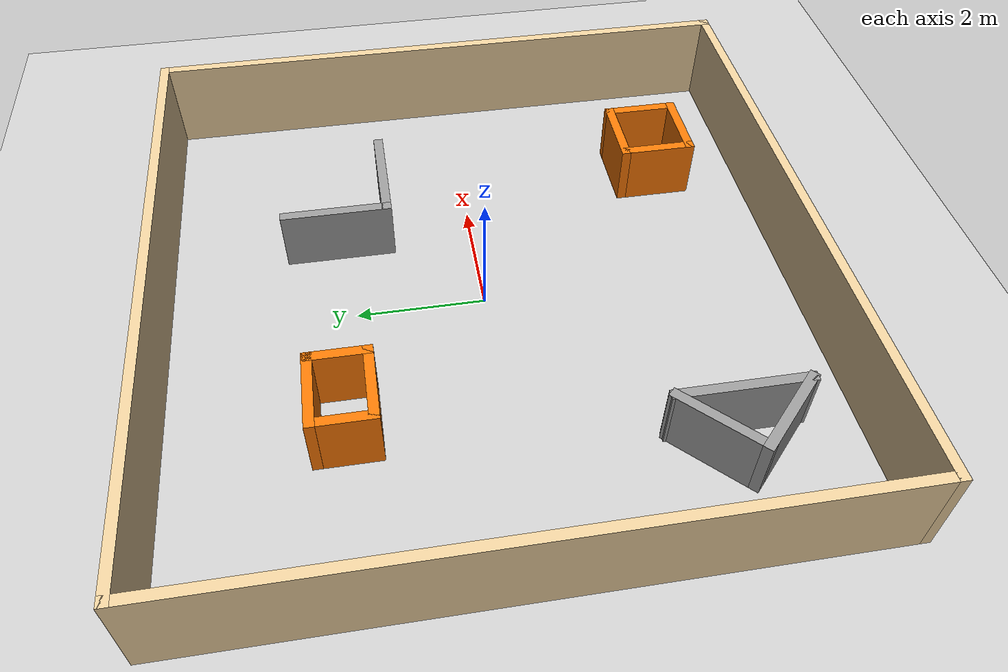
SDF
<sdf version="1.7">
 <world name="default">
  <include><uri>model://ground_plane</uri></include>
  <include><uri>model://sun</uri></include>
  <include><name>='Gazebo_world'</name><uri>model://Gazebo_world</uri><pose>0.005 0.0 0 0 -0 0</pose></include>
 </world>
</sdf>

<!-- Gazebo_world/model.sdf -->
<sdf version='1.7'>
  <model name='Gazebo_world'>
    <pose>0.005 -1.145 0 0 -0 0</pose>
    <link name='Wall_1'>
      <collision name='Wall_1_Collision'>
        <geometry>
          <box>
            <size>10 0.15 1.5</size>
          </box>
        </geometry>
        <pose>0 0 0.75 0 -0 0</pose>
      </collision>
      <visual name='Wall_1_Visual'>
        <pose>0 0 0.75 0 -0 0</pose>
        <geometry>
          <box>
            <size>10 0.15 1.5</size>
          </box>
        </geometry>
        <material>
          <script>
            <uri>file://media/materials/scripts/gazebo.material</uri>
            <name>Gazebo/Grey</name>
          </script>
          <ambient>0.921569 0.807843 0.615686 1</ambient>
        </material>
        <meta>
          <layer>0</layer>
        </meta>
      </visual>
      <pose>0 -4.925 0 0 -0 0</pose>
    </link>
    <link name='Wall_10'>
      <collision name='Wall_10_Collision'>
        <geometry>
          <box>
            <size>1 0.15 1</size>
          </box>
        </geometry>
        <pose>0 0 0.5 0 -0 0</pose>
      </collision>
      <visual name='Wall_10_Visual'>
        <pose>0 0 0.5 0 -0 0</pose>
        <geometry>
          <box>
            <size>1 0.15 1</size>
          </box>
        </geometry>
        <material>
          <script>
            <uri>file://media/materials/scripts/gazebo.material</uri>
            <name>Gazebo/Grey</name>
          </script>
          <ambient>0.996078 0.47451 0.0196078 1</ambient>
        </material>
        <meta>
          <layer>0</layer>
        </meta>
      </visual>
      <pose>-1.506 2.302 0 0 -0 1.5708</pose>
    </link>
    <link name='Wall_12'>
      <collision name='Wall_12_Collision'>
        <geometry>
          <box>
            <size>1.25 0.15 1</size>
          </box>
        </geometry>
        <pose>0 0 0.5 0 -0 0</pose>
      </collision>
      <visual name='Wall_12_Visual'>
        <pose>0 0 0.5 0 -0 0</pose>
        <geometry>
          <box>
            <size>1.25 0.15 1</size>
          </box>
        </geometry>
        <material>
          <script>
            <uri>file://media/materials/scripts/gazebo.material</uri>
            <name>Gazebo/Grey</name>
          </script>
          <ambient>0.996078 0.47451 0.0196078 1</ambient>
        </material>
        <meta>
          <layer>0</layer>
        </meta>
      </visual>
      <pose>2.64 -2.731 0 0 -0 3.14159</pose>
    </link>
    <link name='Wall_13'>
      <collision name='Wall_13_Collision'>
        <geometry>
          <box>
            <size>1.25 0.15 1</size>
          </box>
        </geometry>
        <pose>0 0 0.5 0 -0 0</pose>
      </collision>
      <visual name='Wall_13_Visual'>
        <pose>0 0 0.5 0 -0 0</pose>
        <geometry>
          <box>
            <size>1.25 0.15 1</size>
          </box>
        </geometry>
        <material>
          <script>
            <uri>file://media/materials/scripts/gazebo.material</uri>
            <name>Gazebo/Grey</name>
          </script>
          <ambient>0.996078 0.47451 0.0196078 1</ambient>
        </material>
        <meta>
          <layer>0</layer>
        </meta>
      </visual>
      <pose>2.09 -3.281 0 0 -0 -1.5708</pose>
    </link>
    <link name='Wall_14'>
      <collision name='Wall_14_Collision'>
        <geometry>
          <box>
            <size>1.25 0.15 1</size>
          </box>
        </geometry>
        <pose>0 0 0.5 0 -0 0</pose>
      </collision>
      <visual name='Wall_14_Visual'>
        <pose>0 0 0.5 0 -0 0</pose>
        <geometry>
          <box>
            <size>1.25 0.15 1</size>
          </box>
        </geometry>
        <material>
          <script>
            <uri>file://media/materials/scripts/gazebo.material</uri>
            <name>Gazebo/Grey</name>
          </script>
          <ambient>0.996078 0.47451 0.0196078 1</ambient>
        </material>
        <meta>
          <layer>0</layer>
        </meta>
      </visual>
      <pose>2.64 -3.831 0 0 -0 0</pose>
    </link>
    <link name='Wall_15'>
      <collision name='Wall_15_Collision'>
        <geometry>
          <box>
            <size>1.25 0.15 1</size>
          </box>
        </geometry>
        <pose>0 0 0.5 0 -0 0</pose>
      </collision>
      <visual name='Wall_15_Visual'>
        <pose>0 0 0.5 0 -0 0</pose>
        <geometry>
          <box>
            <size>1.25 0.15 1</size>
          </box>
        </geometry>
        <material>
          <script>
            <uri>file://media/materials/scripts/gazebo.material</uri>
            <name>Gazebo/Grey</name>
          </script>
          <ambient>0.996078 0.47451 0.0196078 1</ambient>
        </material>
        <meta>
          <layer>0</layer>
        </meta>
      </visual>
      <pose>3.19 -3.281 0 0 -0 1.5708</pose>
    </link>
    <link name='Wall_23'>
      <collision name='Wall_23_Collision'>
        <geometry>
          <box>
            <size>1.5 0.15 1</size>
          </box>
        </geometry>
        <pose>0 0 0.5 0 -0 0</pose>
      </collision>
      <visual name='Wall_23_Visual'>
        <pose>0 0 0.5 0 -0 0</pose>
        <geometry>
          <box>
            <size>1.5 0.15 1</size>
          </box>
        </geometry>
        <material>
          <script>
            <uri>file://media/materials/scripts/gazebo.material</uri>
            <name>Gazebo/Grey</name>
          </script>
          <ambient>1 1 1 1</ambient>
        </material>
        <meta>
          <layer>0</layer>
        </meta>
      </visual>
      <pose>-3.386 -2.584 0 0 -0 -2.35619</pose>
    </link>
    <link name='Wall_24'>
      <collision name='Wall_24_Collision'>
        <geometry>
          <box>
            <size>1.5 0.15 1</size>
          </box>
        </geometry>
        <pose>0 0 0.5 0 -0 0</pose>
      </collision>
      <visual name='Wall_24_Visual'>
        <pose>0 0 0.5 0 -0 0</pose>
        <geometry>
          <box>
            <size>1.5 0.15 1</size>
          </box>
        </geometry>
        <material>
          <script>
            <uri>file://media/materials/scripts/gazebo.material</uri>
            <name>Gazebo/Grey</name>
          </script>
          <ambient>1 1 1 1</ambient>
        </material>
        <meta>
          <layer>0</layer>
        </meta>
      </visual>
      <pose>-3.386 -3.5385 0 0 -0 -0.785922</pose>
    </link>
    <link name='Wall_25'>
      <collision name='Wall_25_Collision'>
        <geometry>
          <box>
            <size>2.05919 0.15 1</size>
          </box>
        </geometry>
        <pose>0 0 0.5 0 -0 0</pose>
      </collision>
      <visual name='Wall_25_Visual'>
        <pose>0 0 0.5 0 -0 0</pose>
        <geometry>
          <box>
            <size>2.05919 0.15 1</size>
          </box>
        </geometry>
        <material>
          <script>
            <uri>file://media/materials/scripts/gazebo.material</uri>
            <name>Gazebo/Grey</name>
          </script>
          <ambient>1 1 1 1</ambient>
        </material>
        <meta>
          <layer>0</layer>
        </meta>
      </visual>
      <pose>-2.909 -3.0615 0 0 -0 1.5708</pose>
    </link>
    <link name='Wall_27'>
      <collision name='Wall_27_Collision'>
        <geometry>
          <box>
            <size>1.75 0.15 1</size>
          </box>
        </geometry>
        <pose>0 0 0.5 0 -0 0</pose>
      </collision>
      <visual name='Wall_27_Visual'>
        <pose>0 0 0.5 0 -0 0</pose>
        <geometry>
          <box>
            <size>1.75 0.15 1</size>
          </box>
        </geometry>
        <material>
          <script>
            <uri>file://media/materials/scripts/gazebo.material</uri>
            <name>Gazebo/Grey</name>
          </script>
          <ambient>1 1 1 1</ambient>
        </material>
        <meta>
          <layer>0</layer>
        </meta>
      </visual>
      <pose>1.363 2.169 0 0 -0 -1.5708</pose>
    </link>
    <link name='Wall_28'>
      <collision name='Wall_28_Collision'>
        <geometry>
          <box>
            <size>1.75 0.15 1</size>
          </box>
        </geometry>
        <pose>0 0 0.5 0 -0 0</pose>
      </collision>
      <visual name='Wall_28_Visual'>
        <pose>0 0 0.5 0 -0 0</pose>
        <geometry>
          <box>
            <size>1.75 0.15 1</size>
          </box>
        </geometry>
        <material>
          <script>
            <uri>file://media/materials/scripts/gazebo.material</uri>
            <name>Gazebo/Grey</name>
          </script>
          <ambient>1 1 1 1</ambient>
        </material>
        <meta>
          <layer>0</layer>
        </meta>
      </visual>
      <pose>2.163 1.369 0 0 -0 0</pose>
    </link>
    <link name='Wall_3'>
      <collision name='Wall_3_Collision'>
        <geometry>
          <box>
            <size>10 0.15 1.5</size>
          </box>
        </geometry>
        <pose>0 0 0.75 0 -0 0</pose>
      </collision>
      <visual name='Wall_3_Visual'>
        <pose>0 0 0.75 0 -0 0</pose>
        <geometry>
          <box>
            <size>10 0.15 1.5</size>
          </box>
        </geometry>
        <material>
          <script>
            <uri>file://media/materials/scripts/gazebo.material</uri>
            <name>Gazebo/Grey</name>
          </script>
          <ambient>0.921569 0.807843 0.615686 1</ambient>
        </material>
        <meta>
          <layer>0</layer>
        </meta>
      </visual>
      <pose>-4.925 0 0 0 -0 1.5708</pose>
    </link>
    <link name='Wall_4'>
      <collision name='Wall_4_Collision'>
        <geometry>
          <box>
            <size>10 0.15 1.5</size>
          </box>
        </geometry>
        <pose>0 0 0.75 0 -0 0</pose>
      </collision>
      <visual name='Wall_4_Visual'>
        <pose>0 0 0.75 0 -0 0</pose>
        <geometry>
          <box>
            <size>10 0.15 1.5</size>
          </box>
        </geometry>
        <material>
          <script>
            <uri>file://media/materials/scripts/gazebo.material</uri>
            <name>Gazebo/Grey</name>
          </script>
          <ambient>0.921569 0.807843 0.615686 1</ambient>
        </material>
        <meta>
          <layer>0</layer>
        </meta>
      </visual>
      <pose>0 4.925 0 0 -0 0</pose>
    </link>
    <link name='Wall_5'>
      <collision name='Wall_5_Collision'>
        <geometry>
          <box>
            <size>10 0.15 1.5</size>
          </box>
        </geometry>
        <pose>0 0 0.75 0 -0 0</pose>
      </collision>
      <visual name='Wall_5_Visual'>
        <pose>0 0 0.75 0 -0 0</pose>
        <geometry>
          <box>
            <size>10 0.15 1.5</size>
          </box>
        </geometry>
        <material>
          <script>
            <uri>file://media/materials/scripts/gazebo.material</uri>
            <name>Gazebo/Grey</name>
          </script>
          <ambient>0.921569 0.807843 0.615686 1</ambient>
        </material>
        <meta>
          <layer>0</layer>
        </meta>
      </visual>
      <pose>4.925 0 0 0 -0 -1.5708</pose>
    </link>
    <link name='Wall_7'>
      <collision name='Wall_7_Collision'>
        <geometry>
          <box>
            <size>1.25 0.15 1</size>
          </box>
        </geometry>
        <pose>0 0 0.5 0 -0 0</pose>
      </collision>
      <visual name='Wall_7_Visual'>
        <pose>0 0 0.5 0 -0 0</pose>
        <geometry>
          <box>
            <size>1.25 0.15 1</size>
          </box>
        </geometry>
        <material>
          <script>
            <uri>file://media/materials/scripts/gazebo.material</uri>
            <name>Gazebo/Grey</name>
          </script>
          <ambient>0.996078 0.47451 0.0196078 1</ambient>
        </material>
        <meta>
          <layer>0</layer>
        </meta>
      </visual>
      <pose>-2.056 2.727 0 0 -0 3.14159</pose>
    </link>
    <link name='Wall_8'>
      <collision name='Wall_8_Collision'>
        <geometry>
          <box>
            <size>1 0.15 1</size>
          </box>
        </geometry>
        <pose>0 0 0.5 0 -0 0</pose>
      </collision>
      <visual name='Wall_8_Visual'>
        <pose>0 0 0.5 0 -0 0</pose>
        <geometry>
          <box>
            <size>1 0.15 1</size>
          </box>
        </geometry>
        <material>
          <script>
            <uri>file://media/materials/scripts/gazebo.material</uri>
            <name>Gazebo/Grey</name>
          </script>
          <ambient>0.996078 0.47451 0.0196078 1</ambient>
        </material>
        <meta>
          <layer>0</layer>
        </meta>
      </visual>
      <pose>-2.606 2.302 0 0 -0 -1.5708</pose>
    </link>
    <link name='Wall_9'>
      <collision name='Wall_9_Collision'>
        <geometry>
          <box>
            <size>1.25 0.15 1</size>
          </box>
        </geometry>
        <pose>0 0 0.5 0 -0 0</pose>
      </collision>
      <visual name='Wall_9_Visual'>
        <pose>0 0 0.5 0 -0 0</pose>
        <geometry>
          <box>
            <size>1.25 0.15 1</size>
          </box>
        </geometry>
        <material>
          <script>
            <uri>file://media/materials/scripts/gazebo.material</uri>
            <name>Gazebo/Grey</name>
          </script>
          <ambient>0.996078 0.47451 0.0196078 1</ambient>
        </material>
        <meta>
          <layer>0</layer>
        </meta>
      </visual>
      <pose>-2.056 1.877 0 0 -0 0</pose>
    </link>
    <static>1</static>
  </model>
</sdf>
